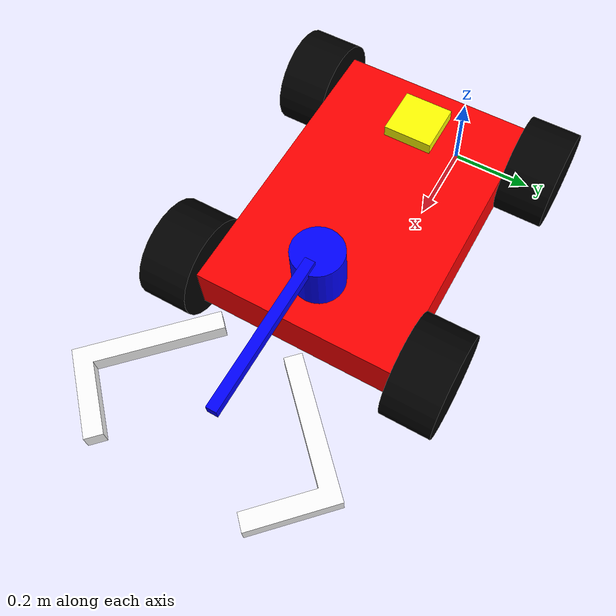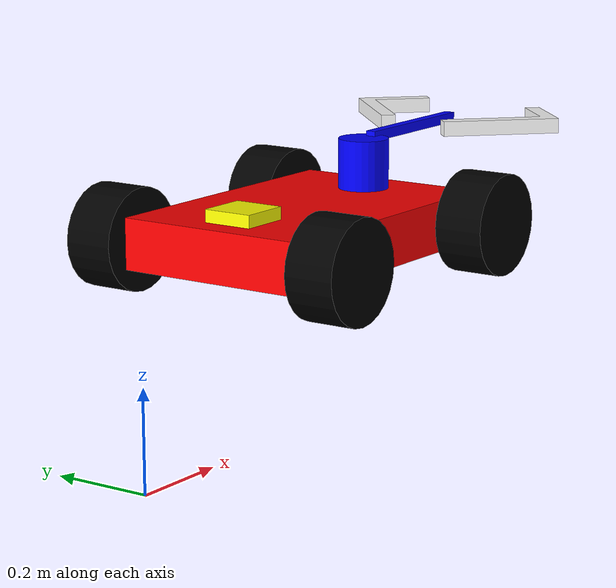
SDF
<?xml version="1.0" ?>
<sdf version="1.8">

        <model name='vehicle_blue'>
            <link name='chassis'>
                <pose >0.5 0 0.4 0 0 0</pose>
                <inertial> <!--inertial properties of the link mass, inertia matix-->
                    <mass>1.14395</mass>
                    <inertia>
                        <ixx>0.126164</ixx>
                        <ixy>0</ixy>
                        <ixz>0</ixz>
                        <iyy>0.416519</iyy>
                        <iyz>0</iyz>
                        <izz>0.481014</izz>
                    </inertia>
                </inertial>
                <visual name='visual'>
                    <geometry>
                        <box>
                            <size>0.6 0.4 0.1</size> <!--question: this size is in meter-->
                        </box>
                    </geometry>
                    <!--let's add color to our link-->
                    <material>
                        <ambient>1.0 0.0 0.0 1</ambient>
                        <diffuse>1.0 0.0 0.0 1</diffuse>
                        <specular>1.0 0.0 0.0 1</specular>
                    </material>
                </visual>
                <collision name='collision'> <!--todo: describe why we need the collision-->
                    <geometry>
                        <box>
                            <size>0.6 0.4 0.1</size>
                        </box>
                    </geometry>
                </collision>
            </link>

            <!--let's build the left wheel-->
            <link name='left_wheel_back'>
                <pose relative_to="chassis">-0.25 0.25 0.0 1.5707 0 0</pose> <!--angles are in radian-->
                <inertial>
                    <mass>2</mass>
                    <inertia>
                        <ixx>0.145833</ixx>
                        <ixy>0</ixy>
                        <ixz>0</ixz>
                        <iyy>0.145833</iyy>
                        <iyz>0</iyz>
                        <izz>0.125</izz>
                    </inertia>
                </inertial>
                <visual name='visual'>
                    <geometry>
                        <cylinder>
                            <radius>0.1</radius>
                            <length>0.1</length>
                        </cylinder>
                    </geometry>
                    <material>
                        <ambient>0 0 0 1</ambient>
                        <diffuse>0 0 0 1</diffuse>
                        <specular>0 0 0 1</specular>
                    </material>
                </visual>
                <collision name='collision'>
                    <geometry>
                        <cylinder>
                            <radius>0.1</radius>
                            <length>0.1</length>
                        </cylinder>
                    </geometry>
                </collision>
            </link>

            <link name='left_wheel_front'>
                <pose relative_to="chassis">0.25 0.25 0 1.5707 0 0</pose> <!--angles are in radian-->
                <inertial>
                    <mass>2</mass>
                    <inertia>
                        <ixx>0.145833</ixx>
                        <ixy>0</ixy>
                        <ixz>0</ixz>
                        <iyy>0.145833</iyy>
                        <iyz>0</iyz>
                        <izz>0.125</izz>
                    </inertia>
                </inertial>
                <visual name='visual'>
                    <geometry>
                        <cylinder>
                            <radius>0.1</radius>
                            <length>0.1</length>
                        </cylinder>
                    </geometry>
                    <material>
                        <ambient>0 0 0 1</ambient>
                        <diffuse>0 0 0 1</diffuse>
                        <specular>0 0 0 1</specular>
                    </material>
                </visual>
                <collision name='collision'>
                    <geometry>
                        <cylinder>
                            <radius>0.1</radius>
                            <length>0.1</length>
                        </cylinder>
                    </geometry>
                </collision>
            </link>

            <link name='right_wheel_back'>
                <pose relative_to="chassis">-0.25 -0.25 0 1.5707 0 0</pose> <!--angles are in radian-->
                <inertial>
                    <mass>2</mass>
                    <inertia>
                        <ixx>0.145833</ixx>
                        <ixy>0</ixy>
                        <ixz>0</ixz>
                        <iyy>0.145833</iyy>
                        <iyz>0</iyz>
                        <izz>0.125</izz>
                    </inertia>
                </inertial>
                <visual name='visual'>
                    <geometry>
                        <cylinder>
                            <radius>0.1</radius>
                            <length>0.1</length>
                        </cylinder>
                    </geometry>
                    <material>
                        <ambient>0 0 0 1</ambient>
                        <diffuse>0 0 0 1</diffuse>
                        <specular>0 0 0 1</specular>
                    </material>
                </visual>
                <collision name='collision'>
                    <geometry>
                        <cylinder>
                            <radius>0.1</radius>
                            <length>0.1</length>
                        </cylinder>
                    </geometry>
                </collision>
            </link>

            <link name='right_wheel_front'>
                <pose relative_to="chassis">0.25 -0.25 0 1.5707 0 0</pose> <!--angles are in radian-->
                <inertial>
                    <mass>2</mass>
                    <inertia>
                        <ixx>0.145833</ixx>
                        <ixy>0</ixy>
                        <ixz>0</ixz>
                        <iyy>0.145833</iyy>
                        <iyz>0</iyz>
                        <izz>0.125</izz>
                    </inertia>
                </inertial>
                <visual name='visual'>
                    <geometry>
                        <cylinder>
                            <radius>0.1</radius>
                            <length>0.1</length>
                        </cylinder>
                    </geometry>
                    <material>
                        <ambient>0 0 0 1</ambient>
                        <diffuse>0 0 0 1</diffuse>
                        <specular>0 0 0 1</specular>
                    </material>
                </visual>
                <collision name='collision'>
                    <geometry>
                        <cylinder>
                            <radius>0.1</radius>
                            <length>0.1</length>
                        </cylinder>
                    </geometry>
                </collision>
            </link>

            <!--connecting these links together using joints-->
            <joint name='left_wheel_back_joint' type='revolute'> <!--continous joint is not supported yet-->
                <pose relative_to='left_wheel_back'/>
                <parent>chassis</parent>
                <child>left_wheel_back</child>
                <axis>
                    <xyz>0 0 -1</xyz> <!--can be defined as any frame or even arbitrary frames-->
                    <limit>
                        <lower>-1.79769e+308</lower>    <!--negative infinity-->
                        <upper>1.79769e+308</upper>     <!--positive infinity-->
                    </limit>
                </axis>
            </joint>

            <joint name='right_wheel_back_joint' type='revolute'>
                <pose relative_to='right_wheel_back'/>
                <parent>chassis</parent>
                <child>right_wheel_back</child>
                <axis>
                    <xyz>0 0 -1</xyz>
                    <limit>
                        <lower>-1.79769e+308</lower>    <!--negative infinity-->
                        <upper>1.79769e+308</upper>     <!--positive infinity-->
                    </limit>
                </axis>
            </joint>

            <joint name='left_wheel_front_joint' type='revolute'> <!--continous joint is not supported yet-->
                <pose relative_to='left_wheel_front'/>
                <parent>chassis</parent>
                <child>left_wheel_front</child>
                <axis>
                    <xyz>0 0 -1</xyz> <!--can be defined as any frame or even arbitrary frames-->
                    <limit>
                        <lower>-1.79769e+308</lower>    <!--negative infinity-->
                        <upper>1.79769e+308</upper>     <!--positive infinity-->
                    </limit>
                </axis>
            </joint>

            <joint name='right_wheel_front_joint' type='revolute'>
                <pose relative_to='right_wheel_front'/>
                <parent>chassis</parent>
                <child>right_wheel_front</child>
                <axis>
                    <xyz>0 0 -1</xyz>
                    <limit>
                        <lower>-1.79769e+308</lower>    <!--negative infinity-->
                        <upper>1.79769e+308</upper>     <!--positive infinity-->
                    </limit>
                </axis>
            </joint>

            <link name='camera_module'>
                <pose relative_to='chassis'>-0.2 0 0.05  0 0 0</pose>
                <inertial> <!--inertial properties of the link mass, inertia matix-->
                    <mass>1.14395</mass>
                    <inertia>
                        <ixx>0.126164</ixx>
                        <ixy>0</ixy>
                        <ixz>0</ixz>
                        <iyy>0.416519</iyy>
                        <iyz>0</iyz>
                        <izz>0.481014</izz>
                    </inertia>
                </inertial>
                <visual name='visual'>
                    <geometry>
                        <box>
                            <size>0.1 0.1 0.05</size> <!--question: this size is in meter-->
                        </box>
                    </geometry>
                    <!--let's add color to our link-->
                    <material>
                        <ambient>1.0 1.0 0.0 1</ambient>
                        <diffuse>1.0 1.0 0.0 1</diffuse>
                        <specular>1.0 1.0 0.0 1</specular>
                    </material>
                </visual>
                <collision name='collision'> <!--todo: describe why we need the collision-->
                    <geometry>
                        <box>
                            <size>0.2 0.2 0.1</size>
                        </box>
                    </geometry>
                </collision>
            </link>

            <joint name='camera_module_joint' type='fixed'>
                <pose relative_to='chassis'/>
                <parent>chassis</parent>
                <child>camera_module</child>
            </joint>

            <link name='arm_base'>
                <pose relative_to='chassis'>0.2 0 0.1  0 0 0</pose>
                <inertial> <!--inertial properties of the link mass, inertia matix-->
                    <mass>1.14395</mass>
                    <inertia>
                        <ixx>0.126164</ixx>
                        <ixy>0</ixy>
                        <ixz>0</ixz>
                        <iyy>0.416519</iyy>
                        <iyz>0</iyz>
                        <izz>0.481014</izz>
                    </inertia>
                </inertial>
                <visual name='visual'>
                    <geometry>
                        <cylinder>
                            <radius>0.05</radius>
                            <length>0.1</length>
                        </cylinder>
                    </geometry>
                    <!--let's add color to our link-->
                    <material>
                        <ambient>0.0 0.0 1.0 1</ambient>
                        <diffuse>0.0 0.0 1.0 1</diffuse>
                        <specular>0.0 0.0 1.0 1</specular>
                    </material>
                </visual>
                <collision name='collision'> <!--todo: describe why we need the collision-->
                    <geometry>
                        <cylinder>
                            <radius>0.05</radius>
                            <length>0.1</length>
                        </cylinder>
                    </geometry>
                </collision>
            </link>

            <joint name='arm_base_joint' type='fixed'>
                <pose relative_to='chassis'/>
                <parent>chassis</parent>
                <child>arm_base</child>
            </joint>

            <link name='arm1'>
                <pose relative_to="arm_base">0.175 0 0.05 0 0 0</pose>
                <inertial>
                    <mass>1</mass>
                    <inertia>
                        <ixx>0.145833</ixx>
                        <ixy>0</ixy>
                        <ixz>0</ixz>
                        <iyy>0.145833</iyy>
                        <iyz>0</iyz>
                        <izz>0.125</izz>
                    </inertia>
                </inertial>
                <visual name='visual'>
                    <geometry>
                        <box>
                            <size>0.3 0.02 0.02</size>
                        </box>
                    </geometry>
                    <material>
                        <ambient>0 0 1 1</ambient>
                        <diffuse>0 0 1 1</diffuse>
                        <specular>0 0 1 1</specular>
                    </material>
                </visual>
                <collision name='collision'>
                    <geometry>
                        <box>
                            <size>0.3 0.02 0.02</size>
                        </box>
                    </geometry>
                </collision>
            </link>

            <joint name='arm1_joint' type='fixed'>
                <pose relative_to="arm_base">0.025 0 0.05 0 0 0</pose>
                <parent>arm_base</parent>
                <child>arm1</child>
            </joint>

            <link name='left_gripper'>
                <pose relative_to="arm1">0.1 0.15 0 0 0 0.785</pose> <!--angles are in radian-->
                <inertial>
                    <mass>2</mass>
                    <inertia>
                        <ixx>0.145833</ixx>
                        <ixy>0</ixy>
                        <ixz>0</ixz>
                        <iyy>0.145833</iyy>
                        <iyz>0</iyz>
                        <izz>0.125</izz>
                    </inertia>
                </inertial>
                <visual name='visual'>
                        <geometry>
                            <mesh>
                                <uri>package://ros_gz_sim_demos/models/STL_Files/Left_gripper.stl</uri>
                                <scale> 0.03 0.03 0.03 </scale>
                            </mesh>

                        </geometry>
                    <material>
                        <ambient>1 1 1 1</ambient>
                        <diffuse>1 1 1 1</diffuse>
                        <specular>1 1 1 1</specular>
                    </material>
                </visual>
                <collision name='collision'>
                    <geometry>
                        <mesh>
                            <uri>package://ros_gz_sim_demos/models/STL_Files/Left_gripper.stl</uri>
                            <scale> 0.03 0.03 0.03 </scale>
                        </mesh>
                    </geometry>
                </collision>
            </link>

            <joint name='left_gripper_joint' type='revolute'>
                <parent>arm1</parent>
                <child>left_gripper</child>
                <axis>
                    <xyz>0 0 1</xyz>
                    <limit>
                        <lower>-0.785</lower>
                        <upper>0.785</upper>
                    </limit>
                </axis>
            </joint>

            <link name='right_gripper'>
                <pose relative_to="arm1">0.1 -0.15 0 0 0 -0.785</pose> <!--angles are in radian-->
                <inertial>
                    <mass>2</mass>
                    <inertia>
                        <ixx>0.145833</ixx>
                        <ixy>0</ixy>
                        <ixz>0</ixz>
                        <iyy>0.145833</iyy>
                        <iyz>0</iyz>
                        <izz>0.125</izz>
                    </inertia>
                </inertial>
                <visual name='visual'>
                        <geometry>
                            <mesh>
                                <uri>package://ros_gz_sim_demos/models/STL_Files/Right_gripper.stl</uri>
                                <scale> 0.03 0.03 0.03 </scale>
                            </mesh>
                        </geometry>
                    <material>
                        <ambient>1 1 1 1</ambient>
                        <diffuse>1 1 1 1</diffuse>
                        <specular>1 1 1 1</specular>
                    </material>
                </visual>
                <collision name='collision'>
                    <geometry>
                        <mesh>
                            <uri>package://ros_gz_sim_demos/models/STL_Files/Right_gripper.stl</uri>
                            <scale> 0.03 0.03 0.03 </scale>
                        </mesh>
                    </geometry>
                </collision>
            </link>

            <joint name='right_gripper_joint' type='revolute'>
                <parent>arm1</parent>
                <child>right_gripper</child>
                <axis>
                    <xyz>0 0 -1</xyz>
                    <limit>
                        <lower>-0.785</lower>
                        <upper>0.785</upper>
                    </limit>
                </axis>
            </joint>

            <plugin
                filename="ignition-gazebo-diff-drive-system"
                name="ignition::gazebo::systems::DiffDrive">
                <left_joint>left_wheel_front_joint</left_joint>
                <right_joint>right_wheel_front_joint</right_joint>
                <wheel_separation>0.5</wheel_separation>
                <wheel_radius>0.1</wheel_radius>
                <topic>model/vehicle/cmd_vel2</topic>
                <odom_publish_frequency>1</odom_publish_frequency>
                <max_linear_acceleration>1</max_linear_acceleration>
                <min_linear_acceleration>-1</min_linear_acceleration>
                <max_angular_acceleration>2</max_angular_acceleration>
                <min_angular_acceleration>-2</min_angular_acceleration>
                <max_linear_velocity>100.0</max_linear_velocity>
                <min_linear_velocity>-100.0</min_linear_velocity>
                <max_angular_velocity>10.0</max_angular_velocity>
                <min_angular_velocity>-10.0</min_angular_velocity>
            </plugin>

            <plugin
                filename="ignition-gazebo-diff-drive-system"
                name="ignition::gazebo::systems::DiffDrive">
                <left_joint>left_wheel_back_joint</left_joint>
                <right_joint>right_wheel_back_joint</right_joint>
                <wheel_separation>0.5</wheel_separation>
                <wheel_radius>0.1</wheel_radius>
                <topic>model/vehicle/cmd_vel2</topic>
                <odom_publish_frequency>1</odom_publish_frequency>
                <max_linear_acceleration>1</max_linear_acceleration>
                <min_linear_acceleration>-1</min_linear_acceleration>
                <max_angular_acceleration>2</max_angular_acceleration>
                <min_angular_acceleration>-2</min_angular_acceleration>
                <max_linear_velocity>100.0</max_linear_velocity>
                <min_linear_velocity>-100.0</min_linear_velocity>
                <max_angular_velocity>10.0</max_angular_velocity>
                <min_angular_velocity>-10.0</min_angular_velocity>
            </plugin>

            <plugin
                filename="ignition-gazebo-diff-drive-system"
                name="ignition::gazebo::systems::DiffDrive">
                <left_joint>left_gripper_joint</left_joint>
                <right_joint>right_gripper_joint</right_joint>
                <wheel_separation>0.5</wheel_separation>
                <wheel_radius>0.1</wheel_radius>
                <topic>model/vehicle/cmd_vel</topic>
                <odom_publish_frequency>1</odom_publish_frequency>
                <max_linear_acceleration>1</max_linear_acceleration>
                <min_linear_acceleration>-1</min_linear_acceleration>
                <max_angular_acceleration>2</max_angular_acceleration>
                <min_angular_acceleration>-2</min_angular_acceleration>
                <max_linear_velocity>100.0</max_linear_velocity>
                <min_linear_velocity>-100.0</min_linear_velocity>
                <max_angular_velocity>10.0</max_angular_velocity>
                <min_angular_velocity>-10.0</min_angular_velocity>
            </plugin>

        </model>

</sdf>
